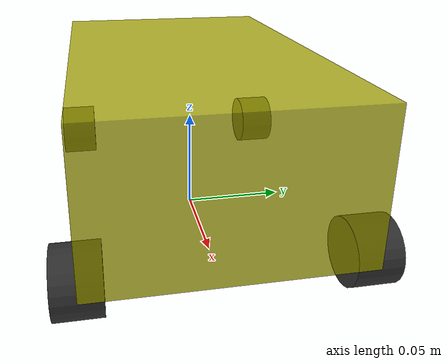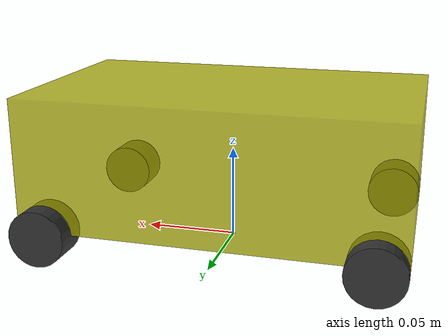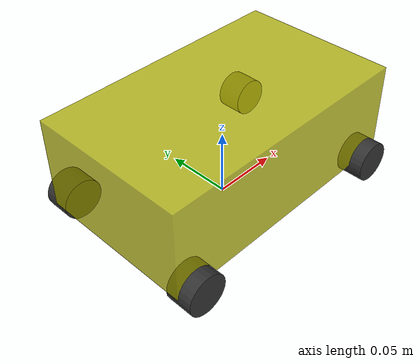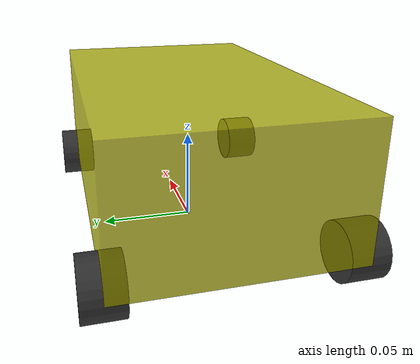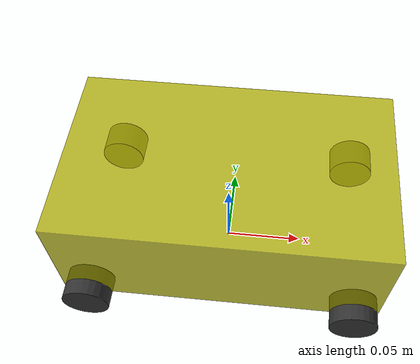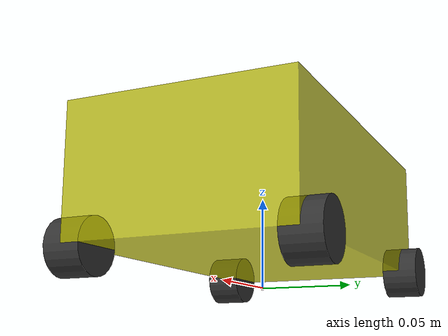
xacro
<robot xmlns:xacro="http://wiki.ros.org/xacro" >
    <!-- PI值 -->
    <xacro:property name="PI" value="3.141592654"/>

    <!--  定义车辆参数 -->
    <!-- 车体长宽高 -->
    <xacro:property name="base_link_x" value="0.2"/>
    <xacro:property name="base_link_y" value="0.12"/>
    <xacro:property name="base_link_z" value="0.07"/>

    <!-- 离地距离 -->
    <xacro:property name="distance" value="0.015"/>

    <!-- 车轮半径 宽度 -->
    <xacro:property name="wheel_radius" value="0.015"/>
    <xacro:property name="wheel_length" value="0.02"/>

    <!-- 定义颜色 -->
    <material name="yellow">
        <color rgba="0.7 0.7 0 0.8"/>
    </material>
    <material name="red">
        <color rgba="0.8 0.1 0.1 0.8" />
    </material>
    <material name="gray">
        <color rgba="0.2 0.2 0.2 0.95" />
    </material>

    <!-- 定义 base_footprint -->
    <link name="base_footprint">
        <visual>
            <geometry>
                <sphere radius="0.001"/>
            </geometry>
        </visual>
    </link>

    <!-- 定义 base_link -->
    <link name="base_link">
        <visual>
            <origin xyz="0 0 0" rpy="0 0 0" />
            <geometry>
                <box size="${base_link_x} ${base_link_y} ${base_link_z}"/>
            </geometry>
            <material name="yellow"/>
        </visual>
    </link>
    <joint name="baselink2basefootprint" type="fixed">
        <parent link="base_footprint"/>
        <child link="base_link"/>
        <origin xyz="0.0 0.0 ${distance + base_link_z / 2}" rpy="0.0 0.0 0.0"/>
    </joint>

    <!-- 车轮宏定义 -->
    <xacro:macro name="wheel_func" params="wheel_name is_front is_left">
        <link name="${wheel_name}_wheel">
            <visual>
                <geometry>
                    <cylinder radius="${wheel_radius}" length="${wheel_length}"/>
                </geometry>
                <origin xyz="0 0 0" rpy="${PI / 2} 0 0"/>
                <material name="gray"/>
            </visual>
        </link>
        <joint name="${wheel_name}2baselink" type="continuous">
            <parent link="base_link"/>
            <child link="${wheel_name}_wheel"/>
            <axis xyz="0 1 0"/>
            <origin xyz="${(base_link_x / 2 - wheel_radius) * is_front} ${base_link_y / 2 * is_left} ${(base_link_z / 2 + distance - wheel_radius) * -1}" rpy="0 0 0"/>
        </joint>
    </xacro:macro>

    <!-- 车轮宏调用 -->
    <xacro:wheel_func wheel_name="left_front" is_front="1" is_left="1" />
    <xacro:wheel_func wheel_name="left_back" is_front="-1" is_left="1" />
    <xacro:wheel_func wheel_name="right_front" is_front="1" is_left="-1" />
    <xacro:wheel_func wheel_name="right_back" is_front="-1" is_left="-1" />
</robot>
